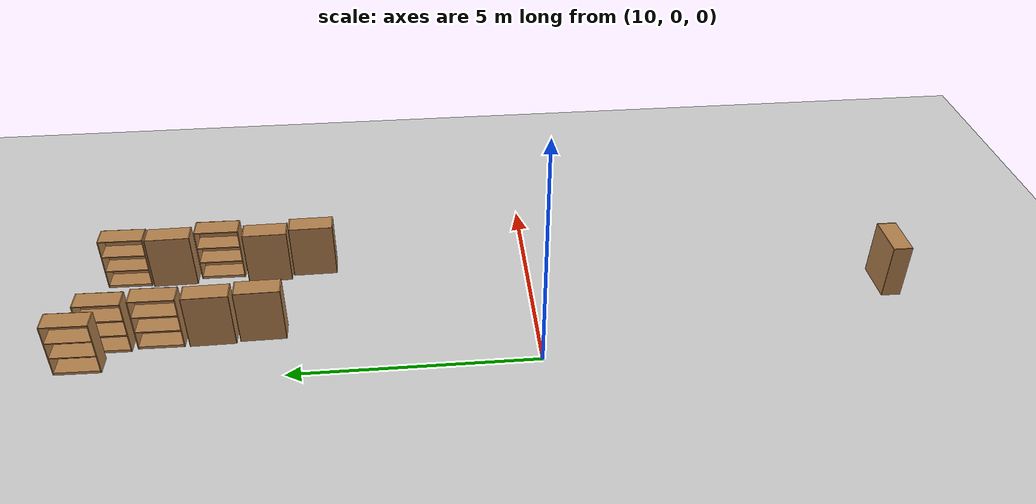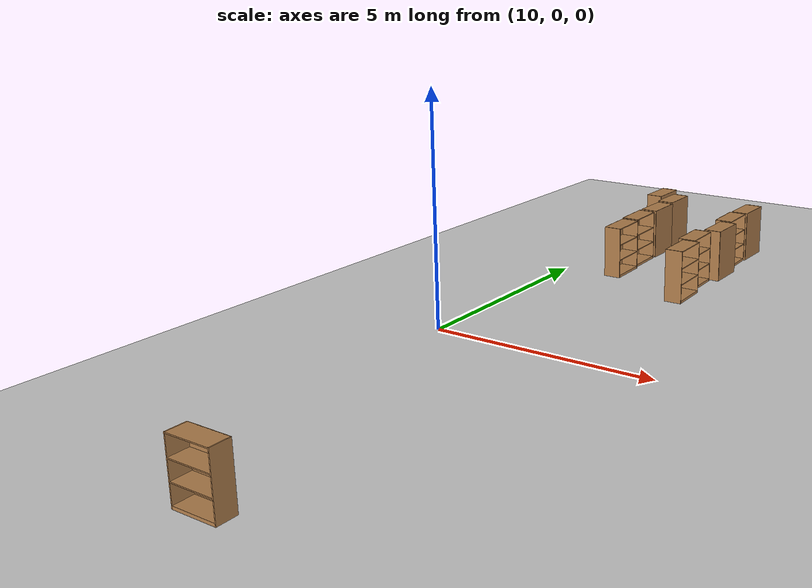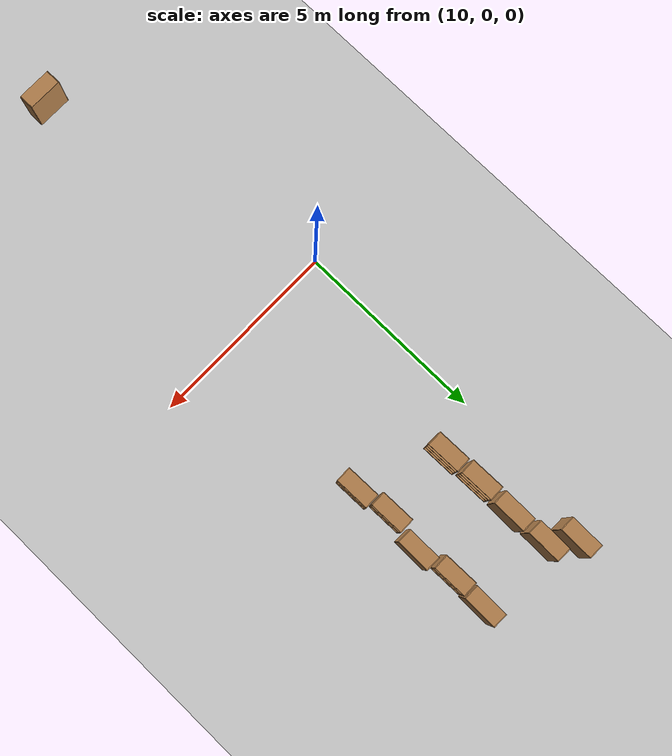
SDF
<sdf version="1.6">
 <world name="default">
  <model name="ground_plane">
   <static>1</static>
   <link name="link">
    <collision name="collision">
     <geometry><plane><normal>0 0 1</normal><size>100 100</size></plane></geometry>
     <surface>
      <contact><collide_bitmask>65535</collide_bitmask></contact>
      <friction><ode><mu>100</mu><mu2>50</mu2></ode></friction>
     </surface>
    </collision>
    <visual name="visual">
     <cast_shadows>0</cast_shadows>
     <geometry><plane><normal>0 0 1</normal><size>100 100</size></plane></geometry>
     <material>
      <script><uri>file://media/materials/scripts/gazebo.material</uri><name>Gazebo/Grey</name></script>
     </material>
    </visual>
   </link>
  </model>
  <model name="30x30env"><static>0</static><pose>32.1206 3.39752 0 0 -0 0</pose></model>
  <model name="bookshelf_clone_0_clone_clone_2_clone_2_clone_3_clone">
   <static>1</static>
   <link name="link">
    <inertial><mass>1</mass></inertial>
    <collision name="back">
     <pose>0 0.005 0.6 0 -0 0</pose>
     <geometry><box><size>0.9 0.01 1.2</size></box></geometry>
    </collision>
    <visual name="visual1">
     <pose>0 0.005 0.6 0 -0 0</pose>
     <geometry><box><size>0.9 0.01 1.2</size></box></geometry>
     <material>
      <script><uri>file://media/materials/scripts/gazebo.material</uri><name>Gazebo/Wood</name></script>
     </material>
    </visual>
    <collision name="left_side">
     <pose>0.45 -0.195 0.6 0 -0 0</pose>
     <geometry><box><size>0.02 0.4 1.2</size></box></geometry>
    </collision>
    <visual name="visual2">
     <pose>0.45 -0.195 0.6 0 -0 0</pose>
     <geometry><box><size>0.02 0.4 1.2</size></box></geometry>
     <material>
      <script><uri>file://media/materials/scripts/gazebo.material</uri><name>Gazebo/Wood</name></script>
     </material>
    </visual>
    <collision name="right_side">
     <pose>-0.45 -0.195 0.6 0 -0 0</pose>
     <geometry><box><size>0.02 0.4 1.2</size></box></geometry>
    </collision>
    <visual name="visual3">
     <pose>-0.45 -0.195 0.6 0 -0 0</pose>
     <geometry><box><size>0.02 0.4 1.2</size></box></geometry>
     <material>
      <script><uri>file://media/materials/scripts/gazebo.material</uri><name>Gazebo/Wood</name></script>
     </material>
    </visual>
    <collision name="bottom">
     <pose>0 -0.195 0.03 0 -0 0</pose>
     <geometry><box><size>0.88 0.4 0.06</size></box></geometry>
    </collision>
    <visual name="visual4">
     <pose>0 -0.195 0.03 0 -0 0</pose>
     <geometry><box><size>0.88 0.4 0.06</size></box></geometry>
     <material>
      <script><uri>file://media/materials/scripts/gazebo.material</uri><name>Gazebo/Wood</name></script>
     </material>
    </visual>
    <collision name="top">
     <pose>0 -0.195 1.19 0 -0 0</pose>
     <geometry><box><size>0.88 0.4 0.02</size></box></geometry>
    </collision>
    <visual name="visual5">
     <pose>0 -0.195 1.19 0 -0 0</pose>
     <geometry><box><size>0.88 0.4 0.02</size></box></geometry>
     <material>
      <script><uri>file://media/materials/scripts/gazebo.material</uri><name>Gazebo/Wood</name></script>
     </material>
    </visual>
    <collision name="low_shelf">
     <pose>0 -0.195 0.43 0 -0 0</pose>
     <geometry><box><size>0.88 0.4 0.02</size></box></geometry>
    </collision>
    <visual name="visual6">
     <pose>0 -0.195 0.43 0 -0 0</pose>
     <geometry><box><size>0.88 0.4 0.02</size></box></geometry>
     <material>
      <script><uri>file://media/materials/scripts/gazebo.material</uri><name>Gazebo/Wood</name></script>
     </material>
    </visual>
    <collision name="high_shelf">
     <pose>0 -0.195 0.8 0 -0 0</pose>
     <geometry><box><size>0.88 0.4 0.02</size></box></geometry>
    </collision>
    <visual name="visual7">
     <pose>0 -0.195 0.8 0 -0 0</pose>
     <geometry><box><size>0.88 0.4 0.02</size></box></geometry>
     <material>
      <script><uri>file://media/materials/scripts/gazebo.material</uri><name>Gazebo/Wood</name></script>
     </material>
    </visual>
   </link>
   <pose>13.421 8.44792 0 0 0 -1.58271</pose>
  </model>
  <model name="bookshelf_clone_0_clone_clone_2_clone_2_clone_3_clone_clone">
   <static>1</static>
   <link name="link">
    <inertial><mass>1</mass></inertial>
    <collision name="back">
     <pose>0 0.005 0.6 0 -0 0</pose>
     <geometry><box><size>0.9 0.01 1.2</size></box></geometry>
    </collision>
    <visual name="visual1">
     <pose>0 0.005 0.6 0 -0 0</pose>
     <geometry><box><size>0.9 0.01 1.2</size></box></geometry>
     <material>
      <script><uri>file://media/materials/scripts/gazebo.material</uri><name>Gazebo/Wood</name></script>
     </material>
    </visual>
    <collision name="left_side">
     <pose>0.45 -0.195 0.6 0 -0 0</pose>
     <geometry><box><size>0.02 0.4 1.2</size></box></geometry>
    </collision>
    <visual name="visual2">
     <pose>0.45 -0.195 0.6 0 -0 0</pose>
     <geometry><box><size>0.02 0.4 1.2</size></box></geometry>
     <material>
      <script><uri>file://media/materials/scripts/gazebo.material</uri><name>Gazebo/Wood</name></script>
     </material>
    </visual>
    <collision name="right_side">
     <pose>-0.45 -0.195 0.6 0 -0 0</pose>
     <geometry><box><size>0.02 0.4 1.2</size></box></geometry>
    </collision>
    <visual name="visual3">
     <pose>-0.45 -0.195 0.6 0 -0 0</pose>
     <geometry><box><size>0.02 0.4 1.2</size></box></geometry>
     <material>
      <script><uri>file://media/materials/scripts/gazebo.material</uri><name>Gazebo/Wood</name></script>
     </material>
    </visual>
    <collision name="bottom">
     <pose>0 -0.195 0.03 0 -0 0</pose>
     <geometry><box><size>0.88 0.4 0.06</size></box></geometry>
    </collision>
    <visual name="visual4">
     <pose>0 -0.195 0.03 0 -0 0</pose>
     <geometry><box><size>0.88 0.4 0.06</size></box></geometry>
     <material>
      <script><uri>file://media/materials/scripts/gazebo.material</uri><name>Gazebo/Wood</name></script>
     </material>
    </visual>
    <collision name="top">
     <pose>0 -0.195 1.19 0 -0 0</pose>
     <geometry><box><size>0.88 0.4 0.02</size></box></geometry>
    </collision>
    <visual name="visual5">
     <pose>0 -0.195 1.19 0 -0 0</pose>
     <geometry><box><size>0.88 0.4 0.02</size></box></geometry>
     <material>
      <script><uri>file://media/materials/scripts/gazebo.material</uri><name>Gazebo/Wood</name></script>
     </material>
    </visual>
    <collision name="low_shelf">
     <pose>0 -0.195 0.43 0 -0 0</pose>
     <geometry><box><size>0.88 0.4 0.02</size></box></geometry>
    </collision>
    <visual name="visual6">
     <pose>0 -0.195 0.43 0 -0 0</pose>
     <geometry><box><size>0.88 0.4 0.02</size></box></geometry>
     <material>
      <script><uri>file://media/materials/scripts/gazebo.material</uri><name>Gazebo/Wood</name></script>
     </material>
    </visual>
    <collision name="high_shelf">
     <pose>0 -0.195 0.8 0 -0 0</pose>
     <geometry><box><size>0.88 0.4 0.02</size></box></geometry>
    </collision>
    <visual name="visual7">
     <pose>0 -0.195 0.8 0 -0 0</pose>
     <geometry><box><size>0.88 0.4 0.02</size></box></geometry>
     <material>
      <script><uri>file://media/materials/scripts/gazebo.material</uri><name>Gazebo/Wood</name></script>
     </material>
    </visual>
   </link>
   <pose>13.0063 7.49795 0 0 -0 1.58577</pose>
  </model>
  <model name="bookshelf_clone_0_clone_clone_2_clone_2_clone_3_clone_clone_0">
   <static>1</static>
   <link name="link">
    <inertial><mass>1</mass></inertial>
    <collision name="back">
     <pose>0 0.005 0.6 0 -0 0</pose>
     <geometry><box><size>0.9 0.01 1.2</size></box></geometry>
    </collision>
    <visual name="visual1">
     <pose>0 0.005 0.6 0 -0 0</pose>
     <geometry><box><size>0.9 0.01 1.2</size></box></geometry>
     <material>
      <script><uri>file://media/materials/scripts/gazebo.material</uri><name>Gazebo/Wood</name></script>
     </material>
    </visual>
    <collision name="left_side">
     <pose>0.45 -0.195 0.6 0 -0 0</pose>
     <geometry><box><size>0.02 0.4 1.2</size></box></geometry>
    </collision>
    <visual name="visual2">
     <pose>0.45 -0.195 0.6 0 -0 0</pose>
     <geometry><box><size>0.02 0.4 1.2</size></box></geometry>
     <material>
      <script><uri>file://media/materials/scripts/gazebo.material</uri><name>Gazebo/Wood</name></script>
     </material>
    </visual>
    <collision name="right_side">
     <pose>-0.45 -0.195 0.6 0 -0 0</pose>
     <geometry><box><size>0.02 0.4 1.2</size></box></geometry>
    </collision>
    <visual name="visual3">
     <pose>-0.45 -0.195 0.6 0 -0 0</pose>
     <geometry><box><size>0.02 0.4 1.2</size></box></geometry>
     <material>
      <script><uri>file://media/materials/scripts/gazebo.material</uri><name>Gazebo/Wood</name></script>
     </material>
    </visual>
    <collision name="bottom">
     <pose>0 -0.195 0.03 0 -0 0</pose>
     <geometry><box><size>0.88 0.4 0.06</size></box></geometry>
    </collision>
    <visual name="visual4">
     <pose>0 -0.195 0.03 0 -0 0</pose>
     <geometry><box><size>0.88 0.4 0.06</size></box></geometry>
     <material>
      <script><uri>file://media/materials/scripts/gazebo.material</uri><name>Gazebo/Wood</name></script>
     </material>
    </visual>
    <collision name="top">
     <pose>0 -0.195 1.19 0 -0 0</pose>
     <geometry><box><size>0.88 0.4 0.02</size></box></geometry>
    </collision>
    <visual name="visual5">
     <pose>0 -0.195 1.19 0 -0 0</pose>
     <geometry><box><size>0.88 0.4 0.02</size></box></geometry>
     <material>
      <script><uri>file://media/materials/scripts/gazebo.material</uri><name>Gazebo/Wood</name></script>
     </material>
    </visual>
    <collision name="low_shelf">
     <pose>0 -0.195 0.43 0 -0 0</pose>
     <geometry><box><size>0.88 0.4 0.02</size></box></geometry>
    </collision>
    <visual name="visual6">
     <pose>0 -0.195 0.43 0 -0 0</pose>
     <geometry><box><size>0.88 0.4 0.02</size></box></geometry>
     <material>
      <script><uri>file://media/materials/scripts/gazebo.material</uri><name>Gazebo/Wood</name></script>
     </material>
    </visual>
    <collision name="high_shelf">
     <pose>0 -0.195 0.8 0 -0 0</pose>
     <geometry><box><size>0.88 0.4 0.02</size></box></geometry>
    </collision>
    <visual name="visual7">
     <pose>0 -0.195 0.8 0 -0 0</pose>
     <geometry><box><size>0.88 0.4 0.02</size></box></geometry>
     <material>
      <script><uri>file://media/materials/scripts/gazebo.material</uri><name>Gazebo/Wood</name></script>
     </material>
    </visual>
   </link>
   <pose>13.5587 6.51194 0 0 0 -1.58271</pose>
  </model>
  <model name="bookshelf_clone_0_clone_clone_2_clone_2_clone_3_clone_clone_clone">
   <static>1</static>
   <link name="link">
    <inertial><mass>1</mass></inertial>
    <collision name="back">
     <pose>0 0.005 0.6 0 -0 0</pose>
     <geometry><box><size>0.9 0.01 1.2</size></box></geometry>
    </collision>
    <visual name="visual1">
     <pose>0 0.005 0.6 0 -0 0</pose>
     <geometry><box><size>0.9 0.01 1.2</size></box></geometry>
     <material>
      <script><uri>file://media/materials/scripts/gazebo.material</uri><name>Gazebo/Wood</name></script>
     </material>
    </visual>
    <collision name="left_side">
     <pose>0.45 -0.195 0.6 0 -0 0</pose>
     <geometry><box><size>0.02 0.4 1.2</size></box></geometry>
    </collision>
    <visual name="visual2">
     <pose>0.45 -0.195 0.6 0 -0 0</pose>
     <geometry><box><size>0.02 0.4 1.2</size></box></geometry>
     <material>
      <script><uri>file://media/materials/scripts/gazebo.material</uri><name>Gazebo/Wood</name></script>
     </material>
    </visual>
    <collision name="right_side">
     <pose>-0.45 -0.195 0.6 0 -0 0</pose>
     <geometry><box><size>0.02 0.4 1.2</size></box></geometry>
    </collision>
    <visual name="visual3">
     <pose>-0.45 -0.195 0.6 0 -0 0</pose>
     <geometry><box><size>0.02 0.4 1.2</size></box></geometry>
     <material>
      <script><uri>file://media/materials/scripts/gazebo.material</uri><name>Gazebo/Wood</name></script>
     </material>
    </visual>
    <collision name="bottom">
     <pose>0 -0.195 0.03 0 -0 0</pose>
     <geometry><box><size>0.88 0.4 0.06</size></box></geometry>
    </collision>
    <visual name="visual4">
     <pose>0 -0.195 0.03 0 -0 0</pose>
     <geometry><box><size>0.88 0.4 0.06</size></box></geometry>
     <material>
      <script><uri>file://media/materials/scripts/gazebo.material</uri><name>Gazebo/Wood</name></script>
     </material>
    </visual>
    <collision name="top">
     <pose>0 -0.195 1.19 0 -0 0</pose>
     <geometry><box><size>0.88 0.4 0.02</size></box></geometry>
    </collision>
    <visual name="visual5">
     <pose>0 -0.195 1.19 0 -0 0</pose>
     <geometry><box><size>0.88 0.4 0.02</size></box></geometry>
     <material>
      <script><uri>file://media/materials/scripts/gazebo.material</uri><name>Gazebo/Wood</name></script>
     </material>
    </visual>
    <collision name="low_shelf">
     <pose>0 -0.195 0.43 0 -0 0</pose>
     <geometry><box><size>0.88 0.4 0.02</size></box></geometry>
    </collision>
    <visual name="visual6">
     <pose>0 -0.195 0.43 0 -0 0</pose>
     <geometry><box><size>0.88 0.4 0.02</size></box></geometry>
     <material>
      <script><uri>file://media/materials/scripts/gazebo.material</uri><name>Gazebo/Wood</name></script>
     </material>
    </visual>
    <collision name="high_shelf">
     <pose>0 -0.195 0.8 0 -0 0</pose>
     <geometry><box><size>0.88 0.4 0.02</size></box></geometry>
    </collision>
    <visual name="visual7">
     <pose>0 -0.195 0.8 0 -0 0</pose>
     <geometry><box><size>0.88 0.4 0.02</size></box></geometry>
     <material>
      <script><uri>file://media/materials/scripts/gazebo.material</uri><name>Gazebo/Wood</name></script>
     </material>
    </visual>
   </link>
   <pose>12.9788 5.50214 0 0 -0 1.58577</pose>
  </model>
  <model name="bookshelf_clone_0_clone_clone_2_clone_2_clone_3_clone_clone_clone_0">
   <static>1</static>
   <link name="link">
    <inertial><mass>1</mass></inertial>
    <collision name="back">
     <pose>0 0.005 0.6 0 -0 0</pose>
     <geometry><box><size>0.9 0.01 1.2</size></box></geometry>
    </collision>
    <visual name="visual1">
     <pose>0 0.005 0.6 0 -0 0</pose>
     <geometry><box><size>0.9 0.01 1.2</size></box></geometry>
     <material>
      <script><uri>file://media/materials/scripts/gazebo.material</uri><name>Gazebo/Wood</name></script>
     </material>
    </visual>
    <collision name="left_side">
     <pose>0.45 -0.195 0.6 0 -0 0</pose>
     <geometry><box><size>0.02 0.4 1.2</size></box></geometry>
    </collision>
    <visual name="visual2">
     <pose>0.45 -0.195 0.6 0 -0 0</pose>
     <geometry><box><size>0.02 0.4 1.2</size></box></geometry>
     <material>
      <script><uri>file://media/materials/scripts/gazebo.material</uri><name>Gazebo/Wood</name></script>
     </material>
    </visual>
    <collision name="right_side">
     <pose>-0.45 -0.195 0.6 0 -0 0</pose>
     <geometry><box><size>0.02 0.4 1.2</size></box></geometry>
    </collision>
    <visual name="visual3">
     <pose>-0.45 -0.195 0.6 0 -0 0</pose>
     <geometry><box><size>0.02 0.4 1.2</size></box></geometry>
     <material>
      <script><uri>file://media/materials/scripts/gazebo.material</uri><name>Gazebo/Wood</name></script>
     </material>
    </visual>
    <collision name="bottom">
     <pose>0 -0.195 0.03 0 -0 0</pose>
     <geometry><box><size>0.88 0.4 0.06</size></box></geometry>
    </collision>
    <visual name="visual4">
     <pose>0 -0.195 0.03 0 -0 0</pose>
     <geometry><box><size>0.88 0.4 0.06</size></box></geometry>
     <material>
      <script><uri>file://media/materials/scripts/gazebo.material</uri><name>Gazebo/Wood</name></script>
     </material>
    </visual>
    <collision name="top">
     <pose>0 -0.195 1.19 0 -0 0</pose>
     <geometry><box><size>0.88 0.4 0.02</size></box></geometry>
    </collision>
    <visual name="visual5">
     <pose>0 -0.195 1.19 0 -0 0</pose>
     <geometry><box><size>0.88 0.4 0.02</size></box></geometry>
     <material>
      <script><uri>file://media/materials/scripts/gazebo.material</uri><name>Gazebo/Wood</name></script>
     </material>
    </visual>
    <collision name="low_shelf">
     <pose>0 -0.195 0.43 0 -0 0</pose>
     <geometry><box><size>0.88 0.4 0.02</size></box></geometry>
    </collision>
    <visual name="visual6">
     <pose>0 -0.195 0.43 0 -0 0</pose>
     <geometry><box><size>0.88 0.4 0.02</size></box></geometry>
     <material>
      <script><uri>file://media/materials/scripts/gazebo.material</uri><name>Gazebo/Wood</name></script>
     </material>
    </visual>
    <collision name="high_shelf">
     <pose>0 -0.195 0.8 0 -0 0</pose>
     <geometry><box><size>0.88 0.4 0.02</size></box></geometry>
    </collision>
    <visual name="visual7">
     <pose>0 -0.195 0.8 0 -0 0</pose>
     <geometry><box><size>0.88 0.4 0.02</size></box></geometry>
     <material>
      <script><uri>file://media/materials/scripts/gazebo.material</uri><name>Gazebo/Wood</name></script>
     </material>
    </visual>
   </link>
   <pose>13.1251 4.55565 0 0 -0 1.58577</pose>
  </model>
  <model name="bookshelf_clone_0_clone_clone_2_clone_2_clone_3_clone_clone_1">
   <static>1</static>
   <link name="link">
    <inertial><mass>1</mass></inertial>
    <collision name="back">
     <pose>0 0.005 0.6 0 -0 0</pose>
     <geometry><box><size>0.9 0.01 1.2</size></box></geometry>
    </collision>
    <visual name="visual1">
     <pose>0 0.005 0.6 0 -0 0</pose>
     <geometry><box><size>0.9 0.01 1.2</size></box></geometry>
     <material>
      <script><uri>file://media/materials/scripts/gazebo.material</uri><name>Gazebo/Wood</name></script>
     </material>
    </visual>
    <collision name="left_side">
     <pose>0.45 -0.195 0.6 0 -0 0</pose>
     <geometry><box><size>0.02 0.4 1.2</size></box></geometry>
    </collision>
    <visual name="visual2">
     <pose>0.45 -0.195 0.6 0 -0 0</pose>
     <geometry><box><size>0.02 0.4 1.2</size></box></geometry>
     <material>
      <script><uri>file://media/materials/scripts/gazebo.material</uri><name>Gazebo/Wood</name></script>
     </material>
    </visual>
    <collision name="right_side">
     <pose>-0.45 -0.195 0.6 0 -0 0</pose>
     <geometry><box><size>0.02 0.4 1.2</size></box></geometry>
    </collision>
    <visual name="visual3">
     <pose>-0.45 -0.195 0.6 0 -0 0</pose>
     <geometry><box><size>0.02 0.4 1.2</size></box></geometry>
     <material>
      <script><uri>file://media/materials/scripts/gazebo.material</uri><name>Gazebo/Wood</name></script>
     </material>
    </visual>
    <collision name="bottom">
     <pose>0 -0.195 0.03 0 -0 0</pose>
     <geometry><box><size>0.88 0.4 0.06</size></box></geometry>
    </collision>
    <visual name="visual4">
     <pose>0 -0.195 0.03 0 -0 0</pose>
     <geometry><box><size>0.88 0.4 0.06</size></box></geometry>
     <material>
      <script><uri>file://media/materials/scripts/gazebo.material</uri><name>Gazebo/Wood</name></script>
     </material>
    </visual>
    <collision name="top">
     <pose>0 -0.195 1.19 0 -0 0</pose>
     <geometry><box><size>0.88 0.4 0.02</size></box></geometry>
    </collision>
    <visual name="visual5">
     <pose>0 -0.195 1.19 0 -0 0</pose>
     <geometry><box><size>0.88 0.4 0.02</size></box></geometry>
     <material>
      <script><uri>file://media/materials/scripts/gazebo.material</uri><name>Gazebo/Wood</name></script>
     </material>
    </visual>
    <collision name="low_shelf">
     <pose>0 -0.195 0.43 0 -0 0</pose>
     <geometry><box><size>0.88 0.4 0.02</size></box></geometry>
    </collision>
    <visual name="visual6">
     <pose>0 -0.195 0.43 0 -0 0</pose>
     <geometry><box><size>0.88 0.4 0.02</size></box></geometry>
     <material>
      <script><uri>file://media/materials/scripts/gazebo.material</uri><name>Gazebo/Wood</name></script>
     </material>
    </visual>
    <collision name="high_shelf">
     <pose>0 -0.195 0.8 0 -0 0</pose>
     <geometry><box><size>0.88 0.4 0.02</size></box></geometry>
    </collision>
    <visual name="visual7">
     <pose>0 -0.195 0.8 0 -0 0</pose>
     <geometry><box><size>0.88 0.4 0.02</size></box></geometry>
     <material>
      <script><uri>file://media/materials/scripts/gazebo.material</uri><name>Gazebo/Wood</name></script>
     </material>
    </visual>
   </link>
   <pose>11.3442 8.4972 0 0 0 -1.58271</pose>
  </model>
  <model name="bookshelf_clone_0_clone_clone_2_clone_2_clone_3_clone_clone_2">
   <static>1</static>
   <link name="link">
    <inertial><mass>1</mass></inertial>
    <collision name="back">
     <pose>0 0.005 0.6 0 -0 0</pose>
     <geometry><box><size>0.9 0.01 1.2</size></box></geometry>
    </collision>
    <visual name="visual1">
     <pose>0 0.005 0.6 0 -0 0</pose>
     <geometry><box><size>0.9 0.01 1.2</size></box></geometry>
     <material>
      <script><uri>file://media/materials/scripts/gazebo.material</uri><name>Gazebo/Wood</name></script>
     </material>
    </visual>
    <collision name="left_side">
     <pose>0.45 -0.195 0.6 0 -0 0</pose>
     <geometry><box><size>0.02 0.4 1.2</size></box></geometry>
    </collision>
    <visual name="visual2">
     <pose>0.45 -0.195 0.6 0 -0 0</pose>
     <geometry><box><size>0.02 0.4 1.2</size></box></geometry>
     <material>
      <script><uri>file://media/materials/scripts/gazebo.material</uri><name>Gazebo/Wood</name></script>
     </material>
    </visual>
    <collision name="right_side">
     <pose>-0.45 -0.195 0.6 0 -0 0</pose>
     <geometry><box><size>0.02 0.4 1.2</size></box></geometry>
    </collision>
    <visual name="visual3">
     <pose>-0.45 -0.195 0.6 0 -0 0</pose>
     <geometry><box><size>0.02 0.4 1.2</size></box></geometry>
     <material>
      <script><uri>file://media/materials/scripts/gazebo.material</uri><name>Gazebo/Wood</name></script>
     </material>
    </visual>
    <collision name="bottom">
     <pose>0 -0.195 0.03 0 -0 0</pose>
     <geometry><box><size>0.88 0.4 0.06</size></box></geometry>
    </collision>
    <visual name="visual4">
     <pose>0 -0.195 0.03 0 -0 0</pose>
     <geometry><box><size>0.88 0.4 0.06</size></box></geometry>
     <material>
      <script><uri>file://media/materials/scripts/gazebo.material</uri><name>Gazebo/Wood</name></script>
     </material>
    </visual>
    <collision name="top">
     <pose>0 -0.195 1.19 0 -0 0</pose>
     <geometry><box><size>0.88 0.4 0.02</size></box></geometry>
    </collision>
    <visual name="visual5">
     <pose>0 -0.195 1.19 0 -0 0</pose>
     <geometry><box><size>0.88 0.4 0.02</size></box></geometry>
     <material>
      <script><uri>file://media/materials/scripts/gazebo.material</uri><name>Gazebo/Wood</name></script>
     </material>
    </visual>
    <collision name="low_shelf">
     <pose>0 -0.195 0.43 0 -0 0</pose>
     <geometry><box><size>0.88 0.4 0.02</size></box></geometry>
    </collision>
    <visual name="visual6">
     <pose>0 -0.195 0.43 0 -0 0</pose>
     <geometry><box><size>0.88 0.4 0.02</size></box></geometry>
     <material>
      <script><uri>file://media/materials/scripts/gazebo.material</uri><name>Gazebo/Wood</name></script>
     </material>
    </visual>
    <collision name="high_shelf">
     <pose>0 -0.195 0.8 0 -0 0</pose>
     <geometry><box><size>0.88 0.4 0.02</size></box></geometry>
    </collision>
    <visual name="visual7">
     <pose>0 -0.195 0.8 0 -0 0</pose>
     <geometry><box><size>0.88 0.4 0.02</size></box></geometry>
     <material>
      <script><uri>file://media/materials/scripts/gazebo.material</uri><name>Gazebo/Wood</name></script>
     </material>
    </visual>
   </link>
   <pose>11.3985 7.47664 0 0 0 -1.58271</pose>
  </model>
  <model name="bookshelf_clone_0_clone_clone_2_clone_2_clone_3_clone_clone_clone_1">
   <static>1</static>
   <link name="link">
    <inertial><mass>1</mass></inertial>
    <collision name="back">
     <pose>0 0.005 0.6 0 -0 0</pose>
     <geometry><box><size>0.9 0.01 1.2</size></box></geometry>
    </collision>
    <visual name="visual1">
     <pose>0 0.005 0.6 0 -0 0</pose>
     <geometry><box><size>0.9 0.01 1.2</size></box></geometry>
     <material>
      <script><uri>file://media/materials/scripts/gazebo.material</uri><name>Gazebo/Wood</name></script>
     </material>
    </visual>
    <collision name="left_side">
     <pose>0.45 -0.195 0.6 0 -0 0</pose>
     <geometry><box><size>0.02 0.4 1.2</size></box></geometry>
    </collision>
    <visual name="visual2">
     <pose>0.45 -0.195 0.6 0 -0 0</pose>
     <geometry><box><size>0.02 0.4 1.2</size></box></geometry>
     <material>
      <script><uri>file://media/materials/scripts/gazebo.material</uri><name>Gazebo/Wood</name></script>
     </material>
    </visual>
    <collision name="right_side">
     <pose>-0.45 -0.195 0.6 0 -0 0</pose>
     <geometry><box><size>0.02 0.4 1.2</size></box></geometry>
    </collision>
    <visual name="visual3">
     <pose>-0.45 -0.195 0.6 0 -0 0</pose>
     <geometry><box><size>0.02 0.4 1.2</size></box></geometry>
     <material>
      <script><uri>file://media/materials/scripts/gazebo.material</uri><name>Gazebo/Wood</name></script>
     </material>
    </visual>
    <collision name="bottom">
     <pose>0 -0.195 0.03 0 -0 0</pose>
     <geometry><box><size>0.88 0.4 0.06</size></box></geometry>
    </collision>
    <visual name="visual4">
     <pose>0 -0.195 0.03 0 -0 0</pose>
     <geometry><box><size>0.88 0.4 0.06</size></box></geometry>
     <material>
      <script><uri>file://media/materials/scripts/gazebo.material</uri><name>Gazebo/Wood</name></script>
     </material>
    </visual>
    <collision name="top">
     <pose>0 -0.195 1.19 0 -0 0</pose>
     <geometry><box><size>0.88 0.4 0.02</size></box></geometry>
    </collision>
    <visual name="visual5">
     <pose>0 -0.195 1.19 0 -0 0</pose>
     <geometry><box><size>0.88 0.4 0.02</size></box></geometry>
     <material>
      <script><uri>file://media/materials/scripts/gazebo.material</uri><name>Gazebo/Wood</name></script>
     </material>
    </visual>
    <collision name="low_shelf">
     <pose>0 -0.195 0.43 0 -0 0</pose>
     <geometry><box><size>0.88 0.4 0.02</size></box></geometry>
    </collision>
    <visual name="visual6">
     <pose>0 -0.195 0.43 0 -0 0</pose>
     <geometry><box><size>0.88 0.4 0.02</size></box></geometry>
     <material>
      <script><uri>file://media/materials/scripts/gazebo.material</uri><name>Gazebo/Wood</name></script>
     </material>
    </visual>
    <collision name="high_shelf">
     <pose>0 -0.195 0.8 0 -0 0</pose>
     <geometry><box><size>0.88 0.4 0.02</size></box></geometry>
    </collision>
    <visual name="visual7">
     <pose>0 -0.195 0.8 0 -0 0</pose>
     <geometry><box><size>0.88 0.4 0.02</size></box></geometry>
     <material>
      <script><uri>file://media/materials/scripts/gazebo.material</uri><name>Gazebo/Wood</name></script>
     </material>
    </visual>
   </link>
   <pose>11.01 6.47127 0 0 -0 1.58577</pose>
  </model>
  <model name="bookshelf_clone_0_clone_clone_2_clone_2_clone_3_clone_clone_clone_2">
   <static>1</static>
   <link name="link">
    <inertial><mass>1</mass></inertial>
    <collision name="back">
     <pose>0 0.005 0.6 0 -0 0</pose>
     <geometry><box><size>0.9 0.01 1.2</size></box></geometry>
    </collision>
    <visual name="visual1">
     <pose>0 0.005 0.6 0 -0 0</pose>
     <geometry><box><size>0.9 0.01 1.2</size></box></geometry>
     <material>
      <script><uri>file://media/materials/scripts/gazebo.material</uri><name>Gazebo/Wood</name></script>
     </material>
    </visual>
    <collision name="left_side">
     <pose>0.45 -0.195 0.6 0 -0 0</pose>
     <geometry><box><size>0.02 0.4 1.2</size></box></geometry>
    </collision>
    <visual name="visual2">
     <pose>0.45 -0.195 0.6 0 -0 0</pose>
     <geometry><box><size>0.02 0.4 1.2</size></box></geometry>
     <material>
      <script><uri>file://media/materials/scripts/gazebo.material</uri><name>Gazebo/Wood</name></script>
     </material>
    </visual>
    <collision name="right_side">
     <pose>-0.45 -0.195 0.6 0 -0 0</pose>
     <geometry><box><size>0.02 0.4 1.2</size></box></geometry>
    </collision>
    <visual name="visual3">
     <pose>-0.45 -0.195 0.6 0 -0 0</pose>
     <geometry><box><size>0.02 0.4 1.2</size></box></geometry>
     <material>
      <script><uri>file://media/materials/scripts/gazebo.material</uri><name>Gazebo/Wood</name></script>
     </material>
    </visual>
    <collision name="bottom">
     <pose>0 -0.195 0.03 0 -0 0</pose>
     <geometry><box><size>0.88 0.4 0.06</size></box></geometry>
    </collision>
    <visual name="visual4">
     <pose>0 -0.195 0.03 0 -0 0</pose>
     <geometry><box><size>0.88 0.4 0.06</size></box></geometry>
     <material>
      <script><uri>file://media/materials/scripts/gazebo.material</uri><name>Gazebo/Wood</name></script>
     </material>
    </visual>
    <collision name="top">
     <pose>0 -0.195 1.19 0 -0 0</pose>
     <geometry><box><size>0.88 0.4 0.02</size></box></geometry>
    </collision>
    <visual name="visual5">
     <pose>0 -0.195 1.19 0 -0 0</pose>
     <geometry><box><size>0.88 0.4 0.02</size></box></geometry>
     <material>
      <script><uri>file://media/materials/scripts/gazebo.material</uri><name>Gazebo/Wood</name></script>
     </material>
    </visual>
    <collision name="low_shelf">
     <pose>0 -0.195 0.43 0 -0 0</pose>
     <geometry><box><size>0.88 0.4 0.02</size></box></geometry>
    </collision>
    <visual name="visual6">
     <pose>0 -0.195 0.43 0 -0 0</pose>
     <geometry><box><size>0.88 0.4 0.02</size></box></geometry>
     <material>
      <script><uri>file://media/materials/scripts/gazebo.material</uri><name>Gazebo/Wood</name></script>
     </material>
    </visual>
    <collision name="high_shelf">
     <pose>0 -0.195 0.8 0 -0 0</pose>
     <geometry><box><size>0.88 0.4 0.02</size></box></geometry>
    </collision>
    <visual name="visual7">
     <pose>0 -0.195 0.8 0 -0 0</pose>
     <geometry><box><size>0.88 0.4 0.02</size></box></geometry>
     <material>
      <script><uri>file://media/materials/scripts/gazebo.material</uri><name>Gazebo/Wood</name></script>
     </material>
    </visual>
   </link>
   <pose>11.0719 5.48642 0 0 -0 1.58577</pose>
  </model>
  <model name="bookshelf_clone_0_clone_clone_2_clone_2_clone_3_clone_clone_1_clone">
   <static>1</static>
   <link name="link">
    <inertial><mass>1</mass></inertial>
    <collision name="back">
     <pose>0 0.005 0.6 0 -0 0</pose>
     <geometry><box><size>0.9 0.01 1.2</size></box></geometry>
    </collision>
    <visual name="visual1">
     <pose>0 0.005 0.6 0 -0 0</pose>
     <geometry><box><size>0.9 0.01 1.2</size></box></geometry>
     <material>
      <script><uri>file://media/materials/scripts/gazebo.material</uri><name>Gazebo/Wood</name></script>
     </material>
    </visual>
    <collision name="left_side">
     <pose>0.45 -0.195 0.6 0 -0 0</pose>
     <geometry><box><size>0.02 0.4 1.2</size></box></geometry>
    </collision>
    <visual name="visual2">
     <pose>0.45 -0.195 0.6 0 -0 0</pose>
     <geometry><box><size>0.02 0.4 1.2</size></box></geometry>
     <material>
      <script><uri>file://media/materials/scripts/gazebo.material</uri><name>Gazebo/Wood</name></script>
     </material>
    </visual>
    <collision name="right_side">
     <pose>-0.45 -0.195 0.6 0 -0 0</pose>
     <geometry><box><size>0.02 0.4 1.2</size></box></geometry>
    </collision>
    <visual name="visual3">
     <pose>-0.45 -0.195 0.6 0 -0 0</pose>
     <geometry><box><size>0.02 0.4 1.2</size></box></geometry>
     <material>
      <script><uri>file://media/materials/scripts/gazebo.material</uri><name>Gazebo/Wood</name></script>
     </material>
    </visual>
    <collision name="bottom">
     <pose>0 -0.195 0.03 0 -0 0</pose>
     <geometry><box><size>0.88 0.4 0.06</size></box></geometry>
    </collision>
    <visual name="visual4">
     <pose>0 -0.195 0.03 0 -0 0</pose>
     <geometry><box><size>0.88 0.4 0.06</size></box></geometry>
     <material>
      <script><uri>file://media/materials/scripts/gazebo.material</uri><name>Gazebo/Wood</name></script>
     </material>
    </visual>
    <collision name="top">
     <pose>0 -0.195 1.19 0 -0 0</pose>
     <geometry><box><size>0.88 0.4 0.02</size></box></geometry>
    </collision>
    <visual name="visual5">
     <pose>0 -0.195 1.19 0 -0 0</pose>
     <geometry><box><size>0.88 0.4 0.02</size></box></geometry>
     <material>
      <script><uri>file://media/materials/scripts/gazebo.material</uri><name>Gazebo/Wood</name></script>
     </material>
    </visual>
    <collision name="low_shelf">
     <pose>0 -0.195 0.43 0 -0 0</pose>
     <geometry><box><size>0.88 0.4 0.02</size></box></geometry>
    </collision>
    <visual name="visual6">
     <pose>0 -0.195 0.43 0 -0 0</pose>
     <geometry><box><size>0.88 0.4 0.02</size></box></geometry>
     <material>
      <script><uri>file://media/materials/scripts/gazebo.material</uri><name>Gazebo/Wood</name></script>
     </material>
    </visual>
    <collision name="high_shelf">
     <pose>0 -0.195 0.8 0 -0 0</pose>
     <geometry><box><size>0.88 0.4 0.02</size></box></geometry>
    </collision>
    <visual name="visual7">
     <pose>0 -0.195 0.8 0 -0 0</pose>
     <geometry><box><size>0.88 0.4 0.02</size></box></geometry>
     <material>
      <script><uri>file://media/materials/scripts/gazebo.material</uri><name>Gazebo/Wood</name></script>
     </material>
    </visual>
   </link>
   <pose>10.7834 8.96817 0 0 0 -1.58271</pose>
  </model>
  <model name="bookshelf_clone_clone_clone_0_clone_0_clone_3_clone_1_clone">
   <static>1</static>
   <link name="link">
    <inertial><mass>1</mass></inertial>
    <collision name="back">
     <pose>0 0.005 0.6 0 -0 0</pose>
     <geometry><box><size>0.9 0.01 1.2</size></box></geometry>
    </collision>
    <visual name="visual1">
     <pose>0 0.005 0.6 0 -0 0</pose>
     <geometry><box><size>0.9 0.01 1.2</size></box></geometry>
     <material>
      <script><uri>file://media/materials/scripts/gazebo.material</uri><name>Gazebo/Wood</name></script>
     </material>
    </visual>
    <collision name="left_side">
     <pose>0.45 -0.195 0.6 0 -0 0</pose>
     <geometry><box><size>0.02 0.4 1.2</size></box></geometry>
    </collision>
    <visual name="visual2">
     <pose>0.45 -0.195 0.6 0 -0 0</pose>
     <geometry><box><size>0.02 0.4 1.2</size></box></geometry>
     <material>
      <script><uri>file://media/materials/scripts/gazebo.material</uri><name>Gazebo/Wood</name></script>
     </material>
    </visual>
    <collision name="right_side">
     <pose>-0.45 -0.195 0.6 0 -0 0</pose>
     <geometry><box><size>0.02 0.4 1.2</size></box></geometry>
    </collision>
    <visual name="visual3">
     <pose>-0.45 -0.195 0.6 0 -0 0</pose>
     <geometry><box><size>0.02 0.4 1.2</size></box></geometry>
     <material>
      <script><uri>file://media/materials/scripts/gazebo.material</uri><name>Gazebo/Wood</name></script>
     </material>
    </visual>
    <collision name="bottom">
     <pose>0 -0.195 0.03 0 -0 0</pose>
     <geometry><box><size>0.88 0.4 0.06</size></box></geometry>
    </collision>
    <visual name="visual4">
     <pose>0 -0.195 0.03 0 -0 0</pose>
     <geometry><box><size>0.88 0.4 0.06</size></box></geometry>
     <material>
      <script><uri>file://media/materials/scripts/gazebo.material</uri><name>Gazebo/Wood</name></script>
     </material>
    </visual>
    <collision name="top">
     <pose>0 -0.195 1.19 0 -0 0</pose>
     <geometry><box><size>0.88 0.4 0.02</size></box></geometry>
    </collision>
    <visual name="visual5">
     <pose>0 -0.195 1.19 0 -0 0</pose>
     <geometry><box><size>0.88 0.4 0.02</size></box></geometry>
     <material>
      <script><uri>file://media/materials/scripts/gazebo.material</uri><name>Gazebo/Wood</name></script>
     </material>
    </visual>
    <collision name="low_shelf">
     <pose>0 -0.195 0.43 0 -0 0</pose>
     <geometry><box><size>0.88 0.4 0.02</size></box></geometry>
    </collision>
    <visual name="visual6">
     <pose>0 -0.195 0.43 0 -0 0</pose>
     <geometry><box><size>0.88 0.4 0.02</size></box></geometry>
     <material>
      <script><uri>file://media/materials/scripts/gazebo.material</uri><name>Gazebo/Wood</name></script>
     </material>
    </visual>
    <collision name="high_shelf">
     <pose>0 -0.195 0.8 0 -0 0</pose>
     <geometry><box><size>0.88 0.4 0.02</size></box></geometry>
    </collision>
    <visual name="visual7">
     <pose>0 -0.195 0.8 0 -0 0</pose>
     <geometry><box><size>0.88 0.4 0.02</size></box></geometry>
     <material>
      <script><uri>file://media/materials/scripts/gazebo.material</uri><name>Gazebo/Wood</name></script>
     </material>
    </visual>
   </link>
   <pose>11.7848 -7.35378 0 0 -0 0</pose>
  </model>
 </world>
</sdf>
